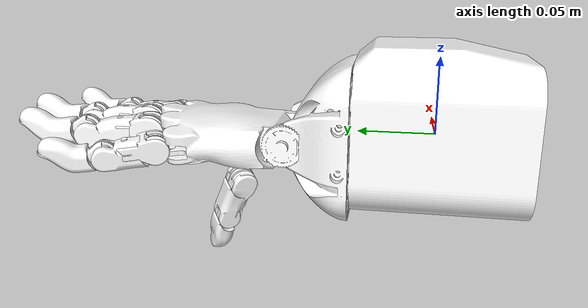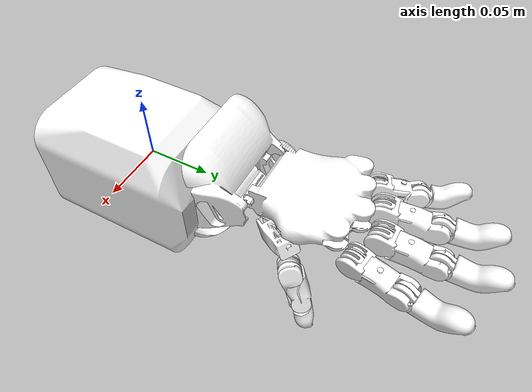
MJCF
<mujoco model="orcahand_left">
	<default>
		<geom rgba="1 1 1 1" type="mesh" friction="1 0.005 0.001" condim="3" margin="0.0005" contype="1" conaffinity="1"/>
		<joint type="hinge" limited="true" damping="0.1" armature="0.001" margin="0.01" frictionloss="0.001"/>
		<position ctrllimited="true" forcelimited="true" forcerange="-1 1" kp="2.0"/>
		<mesh scale="0.001 0.001 0.001"/>
	</default>
	<asset>
		<mesh name="left_L-Carpals" file="mjcf/left/L-Carpals.stl"/>
		<mesh name="left_P-Assembly" file="mjcf/left/P-Assembly.stl"/>
		<mesh name="left_L-T-AP" file="mjcf/left/L-T-AP.stl"/>
		<mesh name="left_M-PP" file="mjcf/left/M-PP.stl"/>
		<mesh name="left_I-L-Assembly" file="mjcf/left/I-L-Assembly.stl"/>
		<mesh name="left_I-PP" file="mjcf/left/I-PP.stl"/>
		<mesh name="left_P-AP" file="mjcf/left/P-AP.stl"/>
		<mesh name="left_I-AP-L" file="mjcf/left/I-AP-L.stl"/>
		<mesh name="left_T-TP-L" file="mjcf/left/T-TP-L.stl"/>
		<mesh name="left_ForeArmStructure-Model" file="mjcf/left/ForeArmStructure-Model.stl"/>
		<mesh name="left_P-FingerTipAssembly" file="mjcf/left/P-FingerTipAssembly.stl"/>
		<mesh name="left_T-DP" file="mjcf/left/T-DP.stl"/>
		<mesh name="left_TopTower-Model" file="mjcf/left/TopTower-Model.stl"/>
		<mesh name="left_I-FingerTipAssembly" file="mjcf/left/I-FingerTipAssembly.stl"/>
		<mesh name="left_T-PP" file="mjcf/left/T-PP.stl"/>
		<mesh name="left_M-AP" file="mjcf/left/M-AP.stl"/>
		<mesh name="left_M-FingerTipAssembly" file="mjcf/left/M-FingerTipAssembly.stl"/>
		<mesh name="left_P-PP" file="mjcf/left/P-PP.stl"/>
		<mesh name="left_T-L-Assembly" file="mjcf/left/T-L-Assembly.stl"/>
		<mesh name="left_M-Assembly" file="mjcf/left/M-Assembly.stl"/>
	</asset>
	<worldbody>
		<body name="left_root">
			<body name="left_ForeArmStructure-Model_e18f2368" pos="0.0 0.0 0.0" quat="1.0 0.0 0.0 0.0">
				<body name="left_TopTower-Model_4a80d30e" pos="-0.010000000000000018 0.05230000000000584 -2.0816681711721685e-17" quat="-0.4999999999999985 0.4999999999999986 -0.5 -0.49999999999999994">
					<body name="left_L-Carpals_719fff8c" pos="-0.0018770780631086439 0.005000000000000008 0.0895000006705525" quat="-0.7071067811865476 -1.7172886266853953e-17 -7.605135346749523e-17 0.7071067811865495">
						<body name="left_T-TP-L_92b8100b" pos="0.031213412275949873 0.01433246945435058 -0.02172481544690435" quat="0.656374345900825 -0.07257037461795694 0.3594909813403495 -0.6592969688281836">
							<body name="left_L-T-AP_58680c44" pos="-0.035999999999999976 1.0408340855860843e-17 -1.2533377113932431e-16" quat="0.8191520442889911 0.5735764363510457 -6.661338147750939e-16 1.609823385706477e-15">
								<body name="left_T-PP_ef067304" pos="3.6356335937636955e-17 -7.738818763564917e-18 -1.3080846264541988e-17" quat="1.4432899320127035e-15 -0.7071067811865464 -9.159339953157541e-16 0.707106781186545">
									<body name="left_T-DP_307db3cc" pos="0.0009999999999999853 -2.2551405187698492e-17 0.03200000000000017" quat="1.0000000000000027 0.0 2.7755575615628914e-17 1.942890293094024e-15">
										<joint name="left_t-pip" pos="6.724022184779712e-17 -4.880775102973274e-17 1.5021079906053094e-16" axis="-8.604228440844963e-16 -0.9999999999999971 -4.440892098500626e-16" range="-0.2617993877991494 1.8675022996339325" ref="0.0"/>
										<geom mesh="left_T-DP" rgba="1 1 1 1"/>
									</body>
									<joint name="left_t-mcp" pos="-3.7171156597089945e-17 -5.821788984262281e-17 6.75998716698855e-17" axis="-3.1086244689504383e-15 1.0000000000000049 2.7755575615628914e-16" range="-1.7453292519943295 0.4363323129985824" ref="-0.0"/>
									<geom mesh="left_T-PP" rgba="1 1 1 1"/>
								</body>
								<joint name="left_t-abd" pos="0.028000000000000018 -2.7755575615628914e-17 2.7321894746634712e-17" axis="1.27675647831893e-15 0.3420201433256675 -0.9396926207859057" range="-0.3141592653589793 0.9599310885968813" ref="0.0"/>
								<geom mesh="left_L-T-AP" rgba="1 1 1 1"/>
							</body>
							<joint name="left_t-cmc" pos="1.5016200088924236e-17 5.139118297581291e-17 0.0038500000000000643" axis="2.435551760271437e-15 -3.885780586188048e-16 -0.9999999999999951" range="-0.5759586531581288 0.7853981633974483" ref="-0.0"/>
							<geom mesh="left_T-TP-L" rgba="1 1 1 1"/>
						</body>
						<body name="left_I-AP-L_57ce92f7" pos="0.03557227633914042 0.0006806400972512766 0.03835792095624094" quat="-0.47163838811428216 -0.4317797959371625 -0.5666863557305154 0.5196056320963941">
							<body name="left_I-PP_3df4f91d" pos="-0.0004009681508766555 -7.792703114739563e-18 2.9526348813840864e-15" quat="-0.7071067811865466 -2.3314683517128287e-15 0.7071067811865461 2.0539125955565396e-15">
								<body name="left_I-FingerTipAssembly_ed91b18a" pos="0.0014999999999999937 5.637851296924623e-18 0.03700000000000012" quat="1.0000000000000022 1.5959455978986625e-16 -1.3877787807814457e-17 3.3306690738754696e-15">
									<joint name="left_i-pip" pos="4.938281810987171e-18 -1.7671634284259278e-17 -5.964481871782928e-17" axis="-3.552713678800501e-15 -0.9999999999999964 2.706168622523819e-16" range="-0.2617993877991494 1.8675022996339325" ref="0.0"/>
									<geom mesh="left_I-FingerTipAssembly" rgba="1 1 1 1"/>
								</body>
								<joint name="left_i-mcp" pos="-3.9536780632609477e-19 -8.231990831039655e-18 1.396150100408705e-16" axis="5.995204332975845e-15 -1.0000000000000038 2.0816681711721685e-17" range="-0.4363323129985824 1.7453292519943295" ref="0.0"/>
								<geom mesh="left_I-PP" rgba="1 1 1 1"/>
							</body>
							<joint name="left_i-abd" pos="0.018750000000000086 -1.8214596497756474e-17 0.000999999999999993" axis="-0.03128510081059521 0.16814409541512249 -0.9852658553123104" range="-0.5235987755982988 0.4363323129985824" ref="-0.0"/>
							<geom mesh="left_I-AP-L" rgba="1 1 1 1"/>
						</body>
						<body name="left_M-AP_e04a96f2" pos="0.010758073950624194 -0.0011463260089169375 0.0482518232227061" quat="-0.49932759692114675 -0.4993275969211465 -0.50067150004065 0.5006715000406502">
							<body name="left_M-PP_08efa608" pos="-0.0006169679429056389 -5.936006894358137e-18 4.45032465740125e-15" quat="-0.7071067811865465 -1.942890293094024e-15 0.7071067811865461 2.1094237467877974e-15">
								<body name="left_M-FingerTipAssembly_34afb748" pos="0.002000000000000013 -3.2526065174565133e-18 0.040000000000000056" quat="1.0000000000000024 1.1655173354219173e-16 4.7813315806610746e-17 3.1086244689504383e-15">
									<joint name="left_m-pip" pos="-1.474514954580278e-17 -2.2103714476980423e-17 -1.665934659025852e-16" axis="-3.2751579226442118e-15 -0.9999999999999984 7.968885967768458e-17" range="-0.2617993877991494 1.8675022996339325" ref="0.0"/>
									<geom mesh="left_M-FingerTipAssembly" rgba="1 1 1 1"/>
								</body>
								<joint name="left_m-mcp" pos="-3.0357660829593107e-18 -1.7841522994185985e-17 -1.3882633405336455e-16" axis="5.773159728050814e-15 -1.000000000000006 -1.476683358925257e-16" range="-0.4363323129985824 1.7453292519943295" ref="0.0"/>
								<geom mesh="left_M-PP" rgba="1 1 1 1"/>
							</body>
							<joint name="left_m-abd" pos="0.019249999999999934 -2.6020852139652106e-17 0.0009999999999999913" axis="-6.106226635438361e-16 1.6653345369377348e-16 -0.9999999999999963" range="-0.47123889803846897 0.47123889803846897" ref="-0.0"/>
							<geom mesh="left_M-AP" rgba="1 1 1 1"/>
						</body>
						<body name="left_M-AP_6ec59111" pos="-0.013004413961368904 -0.00010153680172964337 0.04085088188107136" quat="-0.5143887032276867 -0.554717937998398 -0.4385065669551668 0.4851847709808502">
							<body name="left_M-PP_8660a1eb" pos="-0.0006169679429056013 1.8973538018496328e-19 4.444768121267262e-15" quat="-0.7071067811865466 -1.9984014443252818e-15 0.7071067811865461 2.0539125955565396e-15">
								<body name="left_M-FingerTipAssembly_424a8e75" pos="0.002000000000000003 -2.0274580625478933e-17 0.040000000000000105" quat="1.0000000000000022 1.1102230246251565e-16 4.85722573273506e-17 3.2751579226442118e-15">
									<joint name="left_r-pip" pos="3.0277404230089883e-19 3.103847689461043e-17 -4.554030083181501e-18" axis="-3.4416913763379853e-15 -0.9999999999999967 1.5265566588595902e-16" range="-0.2617993877991494 1.8675022996339325" ref="0.0"/>
									<geom mesh="left_M-FingerTipAssembly" rgba="1 1 1 1"/>
								</body>
								<joint name="left_r-mcp" pos="7.77890138008401e-19 5.960928375611919e-19 -1.4035114566359072e-16" axis="6.050715484207103e-15 -1.0000000000000036 -5.551115123125783e-17" range="-0.4363323129985824 1.7453292519943295" ref="0.0"/>
								<geom mesh="left_M-PP" rgba="1 1 1 1"/>
							</body>
							<joint name="left_r-abd" pos="0.019249999999999958 -6.938893903907228e-18 0.0009999999999999905" axis="-0.025208135220825684 -0.17180872948058878 -0.9848077530122064" range="-0.47123889803846897 0.47123889803846897" ref="-0.0"/>
							<geom mesh="left_M-AP" rgba="1 1 1 1"/>
						</body>
						<body name="left_P-AP_f5e42b61" pos="-0.036667924695998784 0.0050008241469496235 0.02910175144072915" quat="-0.5461467691399455 -0.613860158565644 -0.34021487235312026 0.45733275950178043">
							<body name="left_P-PP_1d411b9b" pos="3.833251243929697e-17 2.2445923627098072e-17 -3.593641296366732e-18" quat="-0.7071067811865466 -1.7763568394002505e-15 0.7071067811865459 1.7763568394002505e-15">
								<body name="left_P-FingerTipAssembly_cd219176" pos="0.000999999999999991 -7.806255641895632e-18 0.03100000000000007" quat="1.0000000000000022 6.938893903907228e-17 0.0 2.942091015256665e-15">
									<joint name="left_p-pip" pos="5.74536201685304e-18 -2.544098244259518e-17 -2.2826085315357464e-16" axis="-3.164135620181696e-15 -0.9999999999999976 1.1102230246251565e-16" range="-0.2617993877991494 1.8675022996339325" ref="0.0"/>
									<geom mesh="left_P-FingerTipAssembly" rgba="1 1 1 1"/>
								</body>
								<joint name="left_p-mcp" pos="-1.2505891133485139e-18 -2.0021543922218088e-17 -5.1761470187350585e-17" axis="5.495603971894525e-15 -1.0000000000000044 2.7755575615628914e-17" range="-0.4363323129985824 1.7453292519943295" ref="0.0"/>
								<geom mesh="left_P-PP" rgba="1 1 1 1"/>
							</body>
							<joint name="left_p-abd" pos="0.01774999999999991 6.201636426617085e-17 0.0009999999999999866" axis="-0.13297994090837154 -0.34829476172536833 -0.927904679517606" range="-0.5235987755982988 0.5235987755982988" ref="-0.0"/>
							<geom mesh="left_P-AP" rgba="1 1 1 1"/>
						</body>
						<joint name="left_wrist" pos="0.004999999999999994 0.001877078063108656 -0.04950000067055224" axis="-0.9999999999999971 1.767581259681953e-16 -1.318389841742366e-16" range="-1.1344640137963142 0.6108652381980153" ref="0.0"/>
						<geom mesh="left_L-Carpals" rgba="1 1 1 1"/>
					</body>
					<geom mesh="left_TopTower-Model" rgba="1 1 1 1"/>
				</body>
				<geom mesh="left_ForeArmStructure-Model" rgba="1 1 1 1"/>
			</body>
		</body>
	</worldbody>
	<actuator>
		<position name="left_wrist_actuator" joint="left_wrist" ctrlrange="-1.1344640137963142 0.6108652381980153"/>
		<position name="left_p-abd_actuator" joint="left_p-abd" ctrlrange="-0.5235987755982988 0.5235987755982988"/>
		<position name="left_p-mcp_actuator" joint="left_p-mcp" ctrlrange="-0.4363323129985824 1.7453292519943295"/>
		<position name="left_p-pip_actuator" joint="left_p-pip" ctrlrange="-0.2617993877991494 1.8675022996339325"/>
		<position name="left_r-abd_actuator" joint="left_r-abd" ctrlrange="-0.47123889803846897 0.47123889803846897"/>
		<position name="left_r-mcp_actuator" joint="left_r-mcp" ctrlrange="-0.4363323129985824 1.7453292519943295"/>
		<position name="left_r-pip_actuator" joint="left_r-pip" ctrlrange="-0.2617993877991494 1.8675022996339325"/>
		<position name="left_m-abd_actuator" joint="left_m-abd" ctrlrange="-0.47123889803846897 0.47123889803846897"/>
		<position name="left_m-mcp_actuator" joint="left_m-mcp" ctrlrange="-0.4363323129985824 1.7453292519943295"/>
		<position name="left_m-pip_actuator" joint="left_m-pip" ctrlrange="-0.2617993877991494 1.8675022996339325"/>
		<position name="left_i-abd_actuator" joint="left_i-abd" ctrlrange="-0.5235987755982988 0.4363323129985824"/>
		<position name="left_i-mcp_actuator" joint="left_i-mcp" ctrlrange="-0.4363323129985824 1.7453292519943295"/>
		<position name="left_i-pip_actuator" joint="left_i-pip" ctrlrange="-0.2617993877991494 1.8675022996339325"/>
		<position name="left_t-cmc_actuator" joint="left_t-cmc" ctrlrange="-0.5759586531581288 0.7853981633974483"/>
		<position name="left_t-abd_actuator" joint="left_t-abd" ctrlrange="-0.3141592653589793 0.9599310885968813"/>
		<position name="left_t-mcp_actuator" joint="left_t-mcp" ctrlrange="-1.7453292519943295 0.4363323129985824"/>
		<position name="left_t-pip_actuator" joint="left_t-pip" ctrlrange="-0.2617993877991494 1.8675022996339325"/>
	</actuator>
	<contact>
		<exclude body1="left_ForeArmStructure-Model_e18f2368" body2="left_TopTower-Model_4a80d30e"/>
		<exclude body1="left_ForeArmStructure-Model_e18f2368" body2="left_L-Carpals_719fff8c"/>
		<exclude body1="left_TopTower-Model_4a80d30e" body2="left_L-Carpals_719fff8c"/>
		<exclude body1="left_ForeArmStructure-Model_e18f2368" body2="left_P-AP_f5e42b61"/>
		<exclude body1="left_TopTower-Model_4a80d30e" body2="left_P-AP_f5e42b61"/>
		<exclude body1="left_L-Carpals_719fff8c" body2="left_P-AP_f5e42b61"/>
		<exclude body1="left_ForeArmStructure-Model_e18f2368" body2="left_P-PP_1d411b9b"/>
		<exclude body1="left_TopTower-Model_4a80d30e" body2="left_P-PP_1d411b9b"/>
		<exclude body1="left_L-Carpals_719fff8c" body2="left_P-PP_1d411b9b"/>
		<exclude body1="left_P-AP_f5e42b61" body2="left_P-PP_1d411b9b"/>
		<exclude body1="left_ForeArmStructure-Model_e18f2368" body2="left_P-FingerTipAssembly_cd219176"/>
		<exclude body1="left_TopTower-Model_4a80d30e" body2="left_P-FingerTipAssembly_cd219176"/>
		<exclude body1="left_L-Carpals_719fff8c" body2="left_P-FingerTipAssembly_cd219176"/>
		<exclude body1="left_P-AP_f5e42b61" body2="left_P-FingerTipAssembly_cd219176"/>
		<exclude body1="left_P-PP_1d411b9b" body2="left_P-FingerTipAssembly_cd219176"/>
		<exclude body1="left_ForeArmStructure-Model_e18f2368" body2="left_M-AP_6ec59111"/>
		<exclude body1="left_TopTower-Model_4a80d30e" body2="left_M-AP_6ec59111"/>
		<exclude body1="left_L-Carpals_719fff8c" body2="left_M-AP_6ec59111"/>
		<exclude body1="left_ForeArmStructure-Model_e18f2368" body2="left_M-PP_8660a1eb"/>
		<exclude body1="left_TopTower-Model_4a80d30e" body2="left_M-PP_8660a1eb"/>
		<exclude body1="left_L-Carpals_719fff8c" body2="left_M-PP_8660a1eb"/>
		<exclude body1="left_M-AP_6ec59111" body2="left_M-PP_8660a1eb"/>
		<exclude body1="left_ForeArmStructure-Model_e18f2368" body2="left_M-FingerTipAssembly_424a8e75"/>
		<exclude body1="left_TopTower-Model_4a80d30e" body2="left_M-FingerTipAssembly_424a8e75"/>
		<exclude body1="left_L-Carpals_719fff8c" body2="left_M-FingerTipAssembly_424a8e75"/>
		<exclude body1="left_M-AP_6ec59111" body2="left_M-FingerTipAssembly_424a8e75"/>
		<exclude body1="left_M-PP_8660a1eb" body2="left_M-FingerTipAssembly_424a8e75"/>
		<exclude body1="left_ForeArmStructure-Model_e18f2368" body2="left_M-AP_e04a96f2"/>
		<exclude body1="left_TopTower-Model_4a80d30e" body2="left_M-AP_e04a96f2"/>
		<exclude body1="left_L-Carpals_719fff8c" body2="left_M-AP_e04a96f2"/>
		<exclude body1="left_ForeArmStructure-Model_e18f2368" body2="left_M-PP_08efa608"/>
		<exclude body1="left_TopTower-Model_4a80d30e" body2="left_M-PP_08efa608"/>
		<exclude body1="left_L-Carpals_719fff8c" body2="left_M-PP_08efa608"/>
		<exclude body1="left_M-AP_e04a96f2" body2="left_M-PP_08efa608"/>
		<exclude body1="left_ForeArmStructure-Model_e18f2368" body2="left_M-FingerTipAssembly_34afb748"/>
		<exclude body1="left_TopTower-Model_4a80d30e" body2="left_M-FingerTipAssembly_34afb748"/>
		<exclude body1="left_L-Carpals_719fff8c" body2="left_M-FingerTipAssembly_34afb748"/>
		<exclude body1="left_M-AP_e04a96f2" body2="left_M-FingerTipAssembly_34afb748"/>
		<exclude body1="left_M-PP_08efa608" body2="left_M-FingerTipAssembly_34afb748"/>
		<exclude body1="left_ForeArmStructure-Model_e18f2368" body2="left_I-AP-L_57ce92f7"/>
		<exclude body1="left_TopTower-Model_4a80d30e" body2="left_I-AP-L_57ce92f7"/>
		<exclude body1="left_L-Carpals_719fff8c" body2="left_I-AP-L_57ce92f7"/>
		<exclude body1="left_ForeArmStructure-Model_e18f2368" body2="left_I-PP_3df4f91d"/>
		<exclude body1="left_TopTower-Model_4a80d30e" body2="left_I-PP_3df4f91d"/>
		<exclude body1="left_L-Carpals_719fff8c" body2="left_I-PP_3df4f91d"/>
		<exclude body1="left_I-AP-L_57ce92f7" body2="left_I-PP_3df4f91d"/>
		<exclude body1="left_ForeArmStructure-Model_e18f2368" body2="left_I-FingerTipAssembly_ed91b18a"/>
		<exclude body1="left_TopTower-Model_4a80d30e" body2="left_I-FingerTipAssembly_ed91b18a"/>
		<exclude body1="left_L-Carpals_719fff8c" body2="left_I-FingerTipAssembly_ed91b18a"/>
		<exclude body1="left_I-AP-L_57ce92f7" body2="left_I-FingerTipAssembly_ed91b18a"/>
		<exclude body1="left_I-PP_3df4f91d" body2="left_I-FingerTipAssembly_ed91b18a"/>
		<exclude body1="left_ForeArmStructure-Model_e18f2368" body2="left_T-TP-L_92b8100b"/>
		<exclude body1="left_TopTower-Model_4a80d30e" body2="left_T-TP-L_92b8100b"/>
		<exclude body1="left_L-Carpals_719fff8c" body2="left_T-TP-L_92b8100b"/>
		<exclude body1="left_ForeArmStructure-Model_e18f2368" body2="left_L-T-AP_58680c44"/>
		<exclude body1="left_TopTower-Model_4a80d30e" body2="left_L-T-AP_58680c44"/>
		<exclude body1="left_L-Carpals_719fff8c" body2="left_L-T-AP_58680c44"/>
		<exclude body1="left_T-TP-L_92b8100b" body2="left_L-T-AP_58680c44"/>
		<exclude body1="left_ForeArmStructure-Model_e18f2368" body2="left_T-PP_ef067304"/>
		<exclude body1="left_TopTower-Model_4a80d30e" body2="left_T-PP_ef067304"/>
		<exclude body1="left_L-Carpals_719fff8c" body2="left_T-PP_ef067304"/>
		<exclude body1="left_T-TP-L_92b8100b" body2="left_T-PP_ef067304"/>
		<exclude body1="left_L-T-AP_58680c44" body2="left_T-PP_ef067304"/>
		<exclude body1="left_ForeArmStructure-Model_e18f2368" body2="left_T-DP_307db3cc"/>
		<exclude body1="left_TopTower-Model_4a80d30e" body2="left_T-DP_307db3cc"/>
		<exclude body1="left_L-Carpals_719fff8c" body2="left_T-DP_307db3cc"/>
		<exclude body1="left_T-TP-L_92b8100b" body2="left_T-DP_307db3cc"/>
		<exclude body1="left_L-T-AP_58680c44" body2="left_T-DP_307db3cc"/>
		<exclude body1="left_T-PP_ef067304" body2="left_T-DP_307db3cc"/>
	</contact>
	<equality>
	</equality>
</mujoco>
